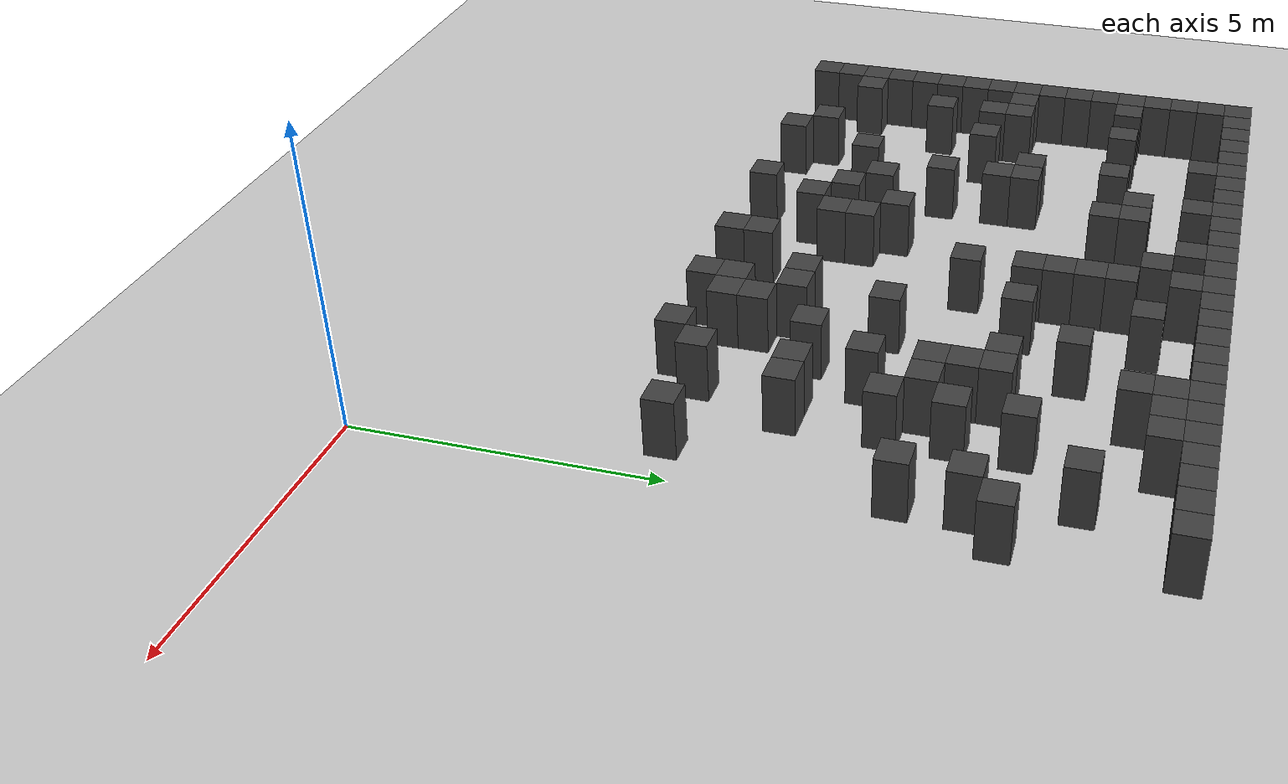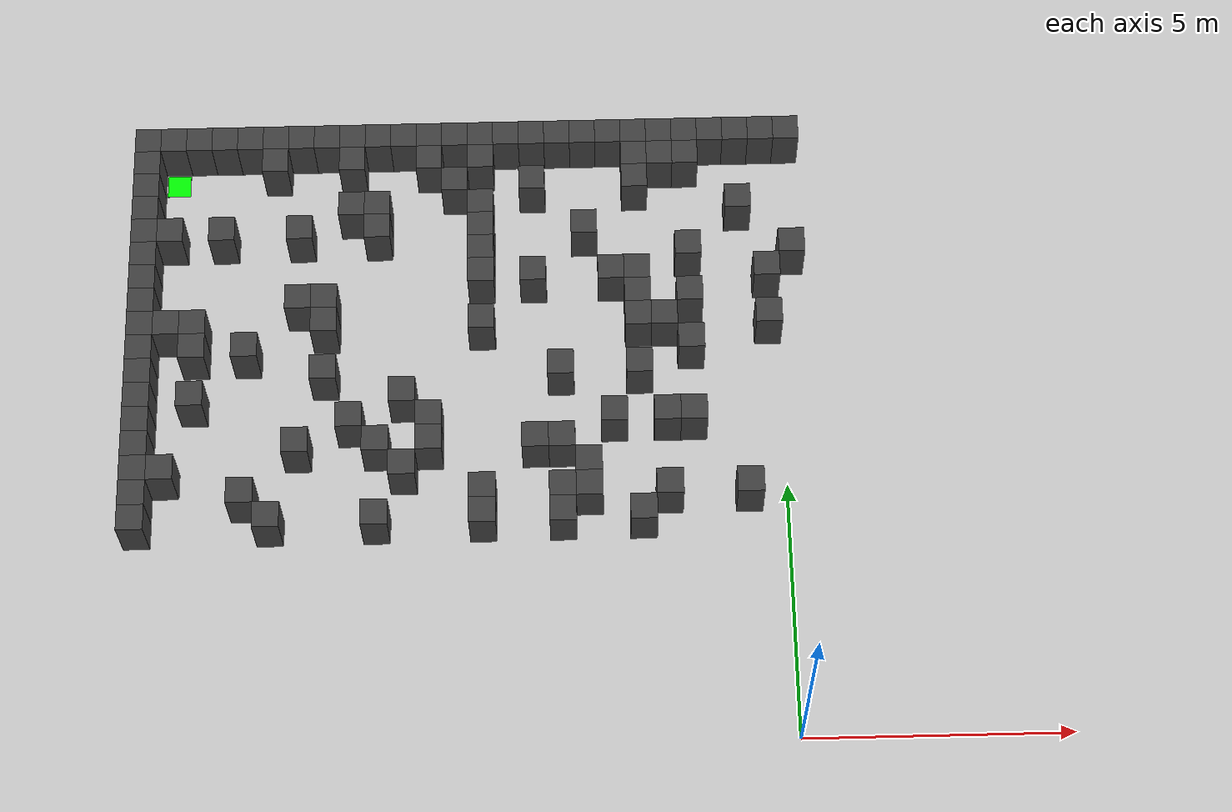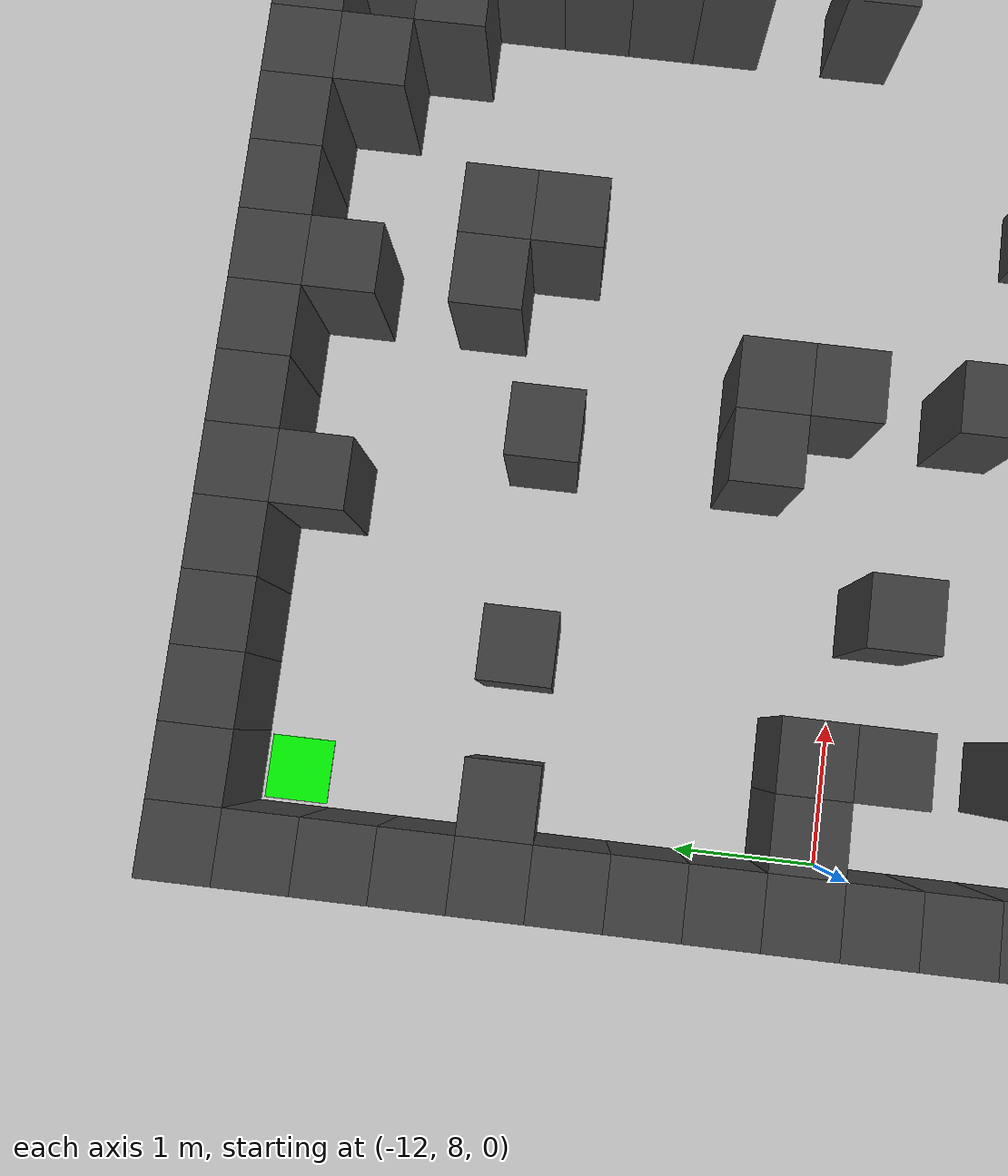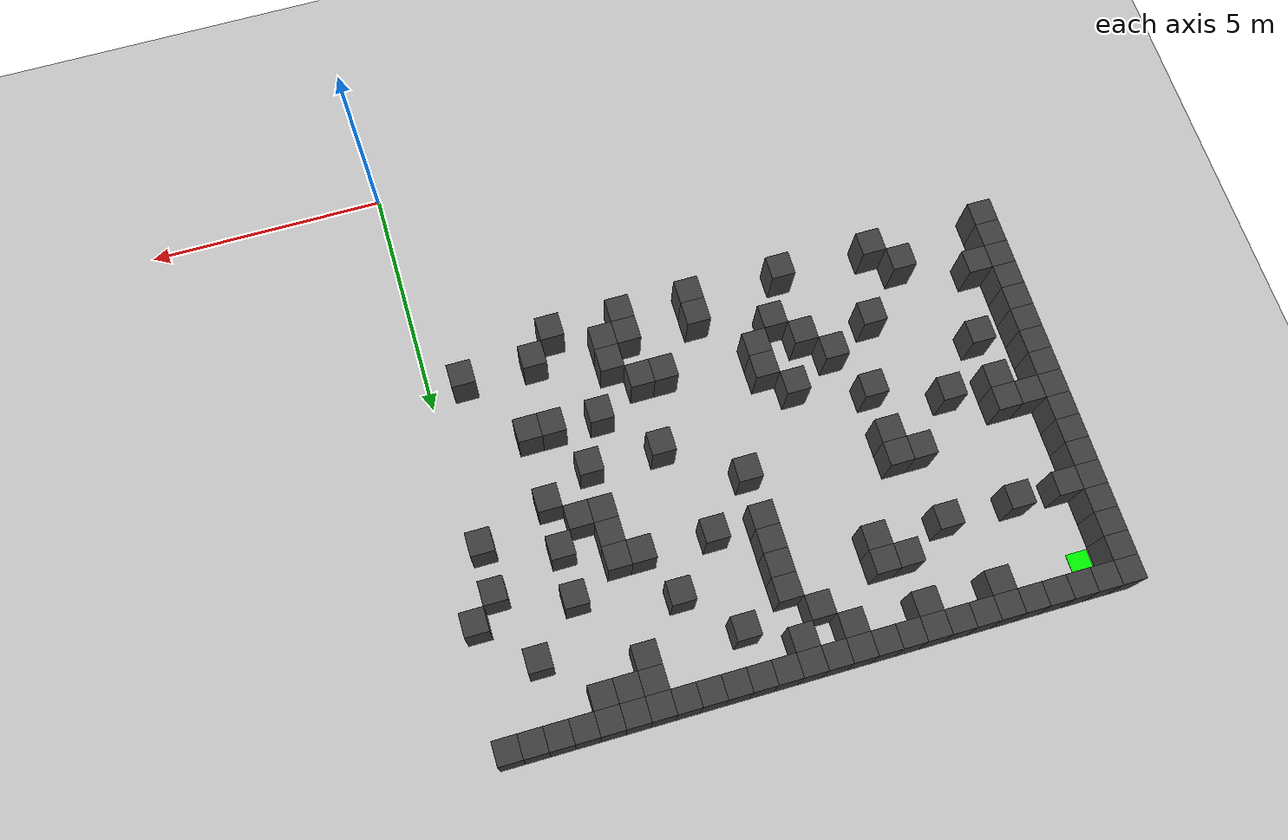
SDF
<sdf version="1.7">
 <world name="map_4390">
  <model name="ground_plane">
   <static>true</static>
   <link name="link">
    <collision name="collision">
     <geometry><plane><normal>0 0 1</normal><size>200 200</size></plane></geometry>
    </collision>
    <visual name="visual">
     <geometry><plane><normal>0 0 1</normal><size>200 200</size></plane></geometry>
     <material><ambient>0.8 0.8 0.8 1</ambient><diffuse>0.8 0.8 0.8 1</diffuse></material>
    </visual>
   </link>
  </model>
  <model name="maze_environment">
   <static>true</static>
   <link name="wall_0">
    <pose>-12.250 12.250 0.500 0 0 0</pose>
    <collision name="col"><geometry><box><size>0.5 0.5 1.0</size></box></geometry></collision>
    <visual name="vis">
     <geometry><box><size>0.5 0.5 1.0</size></box></geometry>
     <material><ambient>0.15 0.15 0.15 1</ambient><diffuse>0.25 0.25 0.25 1</diffuse></material>
    </visual>
   </link>
   <link name="wall_1">
    <pose>-11.750 12.250 0.500 0 0 0</pose>
    <collision name="col"><geometry><box><size>0.5 0.5 1.0</size></box></geometry></collision>
    <visual name="vis">
     <geometry><box><size>0.5 0.5 1.0</size></box></geometry>
     <material><ambient>0.15 0.15 0.15 1</ambient><diffuse>0.25 0.25 0.25 1</diffuse></material>
    </visual>
   </link>
   <link name="wall_2">
    <pose>-11.250 12.250 0.500 0 0 0</pose>
    <collision name="col"><geometry><box><size>0.5 0.5 1.0</size></box></geometry></collision>
    <visual name="vis">
     <geometry><box><size>0.5 0.5 1.0</size></box></geometry>
     <material><ambient>0.15 0.15 0.15 1</ambient><diffuse>0.25 0.25 0.25 1</diffuse></material>
    </visual>
   </link>
   <link name="wall_3">
    <pose>-10.750 12.250 0.500 0 0 0</pose>
    <collision name="col"><geometry><box><size>0.5 0.5 1.0</size></box></geometry></collision>
    <visual name="vis">
     <geometry><box><size>0.5 0.5 1.0</size></box></geometry>
     <material><ambient>0.15 0.15 0.15 1</ambient><diffuse>0.25 0.25 0.25 1</diffuse></material>
    </visual>
   </link>
   <link name="wall_4">
    <pose>-10.250 12.250 0.500 0 0 0</pose>
    <collision name="col"><geometry><box><size>0.5 0.5 1.0</size></box></geometry></collision>
    <visual name="vis">
     <geometry><box><size>0.5 0.5 1.0</size></box></geometry>
     <material><ambient>0.15 0.15 0.15 1</ambient><diffuse>0.25 0.25 0.25 1</diffuse></material>
    </visual>
   </link>
   <link name="wall_5">
    <pose>-9.750 12.250 0.500 0 0 0</pose>
    <collision name="col"><geometry><box><size>0.5 0.5 1.0</size></box></geometry></collision>
    <visual name="vis">
     <geometry><box><size>0.5 0.5 1.0</size></box></geometry>
     <material><ambient>0.15 0.15 0.15 1</ambient><diffuse>0.25 0.25 0.25 1</diffuse></material>
    </visual>
   </link>
   <link name="wall_6">
    <pose>-9.250 12.250 0.500 0 0 0</pose>
    <collision name="col"><geometry><box><size>0.5 0.5 1.0</size></box></geometry></collision>
    <visual name="vis">
     <geometry><box><size>0.5 0.5 1.0</size></box></geometry>
     <material><ambient>0.15 0.15 0.15 1</ambient><diffuse>0.25 0.25 0.25 1</diffuse></material>
    </visual>
   </link>
   <link name="wall_7">
    <pose>-8.750 12.250 0.500 0 0 0</pose>
    <collision name="col"><geometry><box><size>0.5 0.5 1.0</size></box></geometry></collision>
    <visual name="vis">
     <geometry><box><size>0.5 0.5 1.0</size></box></geometry>
     <material><ambient>0.15 0.15 0.15 1</ambient><diffuse>0.25 0.25 0.25 1</diffuse></material>
    </visual>
   </link>
   <link name="wall_8">
    <pose>-8.250 12.250 0.500 0 0 0</pose>
    <collision name="col"><geometry><box><size>0.5 0.5 1.0</size></box></geometry></collision>
    <visual name="vis">
     <geometry><box><size>0.5 0.5 1.0</size></box></geometry>
     <material><ambient>0.15 0.15 0.15 1</ambient><diffuse>0.25 0.25 0.25 1</diffuse></material>
    </visual>
   </link>
   <link name="wall_9">
    <pose>-7.750 12.250 0.500 0 0 0</pose>
    <collision name="col"><geometry><box><size>0.5 0.5 1.0</size></box></geometry></collision>
    <visual name="vis">
     <geometry><box><size>0.5 0.5 1.0</size></box></geometry>
     <material><ambient>0.15 0.15 0.15 1</ambient><diffuse>0.25 0.25 0.25 1</diffuse></material>
    </visual>
   </link>
   <link name="wall_10">
    <pose>-7.250 12.250 0.500 0 0 0</pose>
    <collision name="col"><geometry><box><size>0.5 0.5 1.0</size></box></geometry></collision>
    <visual name="vis">
     <geometry><box><size>0.5 0.5 1.0</size></box></geometry>
     <material><ambient>0.15 0.15 0.15 1</ambient><diffuse>0.25 0.25 0.25 1</diffuse></material>
    </visual>
   </link>
   <link name="wall_11">
    <pose>-6.750 12.250 0.500 0 0 0</pose>
    <collision name="col"><geometry><box><size>0.5 0.5 1.0</size></box></geometry></collision>
    <visual name="vis">
     <geometry><box><size>0.5 0.5 1.0</size></box></geometry>
     <material><ambient>0.15 0.15 0.15 1</ambient><diffuse>0.25 0.25 0.25 1</diffuse></material>
    </visual>
   </link>
   <link name="wall_12">
    <pose>-6.250 12.250 0.500 0 0 0</pose>
    <collision name="col"><geometry><box><size>0.5 0.5 1.0</size></box></geometry></collision>
    <visual name="vis">
     <geometry><box><size>0.5 0.5 1.0</size></box></geometry>
     <material><ambient>0.15 0.15 0.15 1</ambient><diffuse>0.25 0.25 0.25 1</diffuse></material>
    </visual>
   </link>
   <link name="wall_13">
    <pose>-5.750 12.250 0.500 0 0 0</pose>
    <collision name="col"><geometry><box><size>0.5 0.5 1.0</size></box></geometry></collision>
    <visual name="vis">
     <geometry><box><size>0.5 0.5 1.0</size></box></geometry>
     <material><ambient>0.15 0.15 0.15 1</ambient><diffuse>0.25 0.25 0.25 1</diffuse></material>
    </visual>
   </link>
   <link name="wall_14">
    <pose>-5.250 12.250 0.500 0 0 0</pose>
    <collision name="col"><geometry><box><size>0.5 0.5 1.0</size></box></geometry></collision>
    <visual name="vis">
     <geometry><box><size>0.5 0.5 1.0</size></box></geometry>
     <material><ambient>0.15 0.15 0.15 1</ambient><diffuse>0.25 0.25 0.25 1</diffuse></material>
    </visual>
   </link>
   <link name="wall_15">
    <pose>-4.750 12.250 0.500 0 0 0</pose>
    <collision name="col"><geometry><box><size>0.5 0.5 1.0</size></box></geometry></collision>
    <visual name="vis">
     <geometry><box><size>0.5 0.5 1.0</size></box></geometry>
     <material><ambient>0.15 0.15 0.15 1</ambient><diffuse>0.25 0.25 0.25 1</diffuse></material>
    </visual>
   </link>
   <link name="wall_16">
    <pose>-4.250 12.250 0.500 0 0 0</pose>
    <collision name="col"><geometry><box><size>0.5 0.5 1.0</size></box></geometry></collision>
    <visual name="vis">
     <geometry><box><size>0.5 0.5 1.0</size></box></geometry>
     <material><ambient>0.15 0.15 0.15 1</ambient><diffuse>0.25 0.25 0.25 1</diffuse></material>
    </visual>
   </link>
   <link name="wall_17">
    <pose>-3.750 12.250 0.500 0 0 0</pose>
    <collision name="col"><geometry><box><size>0.5 0.5 1.0</size></box></geometry></collision>
    <visual name="vis">
     <geometry><box><size>0.5 0.5 1.0</size></box></geometry>
     <material><ambient>0.15 0.15 0.15 1</ambient><diffuse>0.25 0.25 0.25 1</diffuse></material>
    </visual>
   </link>
   <link name="wall_18">
    <pose>-3.250 12.250 0.500 0 0 0</pose>
    <collision name="col"><geometry><box><size>0.5 0.5 1.0</size></box></geometry></collision>
    <visual name="vis">
     <geometry><box><size>0.5 0.5 1.0</size></box></geometry>
     <material><ambient>0.15 0.15 0.15 1</ambient><diffuse>0.25 0.25 0.25 1</diffuse></material>
    </visual>
   </link>
   <link name="wall_19">
    <pose>-2.750 12.250 0.500 0 0 0</pose>
    <collision name="col"><geometry><box><size>0.5 0.5 1.0</size></box></geometry></collision>
    <visual name="vis">
     <geometry><box><size>0.5 0.5 1.0</size></box></geometry>
     <material><ambient>0.15 0.15 0.15 1</ambient><diffuse>0.25 0.25 0.25 1</diffuse></material>
    </visual>
   </link>
   <link name="wall_20">
    <pose>-2.250 12.250 0.500 0 0 0</pose>
    <collision name="col"><geometry><box><size>0.5 0.5 1.0</size></box></geometry></collision>
    <visual name="vis">
     <geometry><box><size>0.5 0.5 1.0</size></box></geometry>
     <material><ambient>0.15 0.15 0.15 1</ambient><diffuse>0.25 0.25 0.25 1</diffuse></material>
    </visual>
   </link>
   <link name="wall_21">
    <pose>-1.750 12.250 0.500 0 0 0</pose>
    <collision name="col"><geometry><box><size>0.5 0.5 1.0</size></box></geometry></collision>
    <visual name="vis">
     <geometry><box><size>0.5 0.5 1.0</size></box></geometry>
     <material><ambient>0.15 0.15 0.15 1</ambient><diffuse>0.25 0.25 0.25 1</diffuse></material>
    </visual>
   </link>
   <link name="wall_22">
    <pose>-1.250 12.250 0.500 0 0 0</pose>
    <collision name="col"><geometry><box><size>0.5 0.5 1.0</size></box></geometry></collision>
    <visual name="vis">
     <geometry><box><size>0.5 0.5 1.0</size></box></geometry>
     <material><ambient>0.15 0.15 0.15 1</ambient><diffuse>0.25 0.25 0.25 1</diffuse></material>
    </visual>
   </link>
   <link name="wall_23">
    <pose>-0.750 12.250 0.500 0 0 0</pose>
    <collision name="col"><geometry><box><size>0.5 0.5 1.0</size></box></geometry></collision>
    <visual name="vis">
     <geometry><box><size>0.5 0.5 1.0</size></box></geometry>
     <material><ambient>0.15 0.15 0.15 1</ambient><diffuse>0.25 0.25 0.25 1</diffuse></material>
    </visual>
   </link>
   <link name="wall_24">
    <pose>-0.250 12.250 0.500 0 0 0</pose>
    <collision name="col"><geometry><box><size>0.5 0.5 1.0</size></box></geometry></collision>
    <visual name="vis">
     <geometry><box><size>0.5 0.5 1.0</size></box></geometry>
     <material><ambient>0.15 0.15 0.15 1</ambient><diffuse>0.25 0.25 0.25 1</diffuse></material>
    </visual>
   </link>
   <link name="wall_25">
    <pose>0.250 12.250 0.500 0 0 0</pose>
    <collision name="col"><geometry><box><size>0.5 0.5 1.0</size></box></geometry></collision>
    <visual name="vis">
     <geometry><box><size>0.5 0.5 1.0</size></box></geometry>
     <material><ambient>0.15 0.15 0.15 1</ambient><diffuse>0.25 0.25 0.25 1</diffuse></material>
    </visual>
   </link>
   <link name="wall_50">
    <pose>-12.250 11.750 0.500 0 0 0</pose>
    <collision name="col"><geometry><box><size>0.5 0.5 1.0</size></box></geometry></collision>
    <visual name="vis">
     <geometry><box><size>0.5 0.5 1.0</size></box></geometry>
     <material><ambient>0.15 0.15 0.15 1</ambient><diffuse>0.25 0.25 0.25 1</diffuse></material>
    </visual>
   </link>
   <link name="wall_51">
    <pose>-9.750 11.750 0.500 0 0 0</pose>
    <collision name="col"><geometry><box><size>0.5 0.5 1.0</size></box></geometry></collision>
    <visual name="vis">
     <geometry><box><size>0.5 0.5 1.0</size></box></geometry>
     <material><ambient>0.15 0.15 0.15 1</ambient><diffuse>0.25 0.25 0.25 1</diffuse></material>
    </visual>
   </link>
   <link name="wall_52">
    <pose>-8.250 11.750 0.500 0 0 0</pose>
    <collision name="col"><geometry><box><size>0.5 0.5 1.0</size></box></geometry></collision>
    <visual name="vis">
     <geometry><box><size>0.5 0.5 1.0</size></box></geometry>
     <material><ambient>0.15 0.15 0.15 1</ambient><diffuse>0.25 0.25 0.25 1</diffuse></material>
    </visual>
   </link>
   <link name="wall_53">
    <pose>-6.750 11.750 0.500 0 0 0</pose>
    <collision name="col"><geometry><box><size>0.5 0.5 1.0</size></box></geometry></collision>
    <visual name="vis">
     <geometry><box><size>0.5 0.5 1.0</size></box></geometry>
     <material><ambient>0.15 0.15 0.15 1</ambient><diffuse>0.25 0.25 0.25 1</diffuse></material>
    </visual>
   </link>
   <link name="wall_54">
    <pose>-5.750 11.750 0.500 0 0 0</pose>
    <collision name="col"><geometry><box><size>0.5 0.5 1.0</size></box></geometry></collision>
    <visual name="vis">
     <geometry><box><size>0.5 0.5 1.0</size></box></geometry>
     <material><ambient>0.15 0.15 0.15 1</ambient><diffuse>0.25 0.25 0.25 1</diffuse></material>
    </visual>
   </link>
   <link name="wall_55">
    <pose>-2.750 11.750 0.500 0 0 0</pose>
    <collision name="col"><geometry><box><size>0.5 0.5 1.0</size></box></geometry></collision>
    <visual name="vis">
     <geometry><box><size>0.5 0.5 1.0</size></box></geometry>
     <material><ambient>0.15 0.15 0.15 1</ambient><diffuse>0.25 0.25 0.25 1</diffuse></material>
    </visual>
   </link>
   <link name="wall_56">
    <pose>-2.250 11.750 0.500 0 0 0</pose>
    <collision name="col"><geometry><box><size>0.5 0.5 1.0</size></box></geometry></collision>
    <visual name="vis">
     <geometry><box><size>0.5 0.5 1.0</size></box></geometry>
     <material><ambient>0.15 0.15 0.15 1</ambient><diffuse>0.25 0.25 0.25 1</diffuse></material>
    </visual>
   </link>
   <link name="wall_57">
    <pose>-1.750 11.750 0.500 0 0 0</pose>
    <collision name="col"><geometry><box><size>0.5 0.5 1.0</size></box></geometry></collision>
    <visual name="vis">
     <geometry><box><size>0.5 0.5 1.0</size></box></geometry>
     <material><ambient>0.15 0.15 0.15 1</ambient><diffuse>0.25 0.25 0.25 1</diffuse></material>
    </visual>
   </link>
   <link name="wall_64">
    <pose>-12.250 11.250 0.500 0 0 0</pose>
    <collision name="col"><geometry><box><size>0.5 0.5 1.0</size></box></geometry></collision>
    <visual name="vis">
     <geometry><box><size>0.5 0.5 1.0</size></box></geometry>
     <material><ambient>0.15 0.15 0.15 1</ambient><diffuse>0.25 0.25 0.25 1</diffuse></material>
    </visual>
   </link>
   <link name="wall_65">
    <pose>-6.250 11.250 0.500 0 0 0</pose>
    <collision name="col"><geometry><box><size>0.5 0.5 1.0</size></box></geometry></collision>
    <visual name="vis">
     <geometry><box><size>0.5 0.5 1.0</size></box></geometry>
     <material><ambient>0.15 0.15 0.15 1</ambient><diffuse>0.25 0.25 0.25 1</diffuse></material>
    </visual>
   </link>
   <link name="wall_66">
    <pose>-4.750 11.250 0.500 0 0 0</pose>
    <collision name="col"><geometry><box><size>0.5 0.5 1.0</size></box></geometry></collision>
    <visual name="vis">
     <geometry><box><size>0.5 0.5 1.0</size></box></geometry>
     <material><ambient>0.15 0.15 0.15 1</ambient><diffuse>0.25 0.25 0.25 1</diffuse></material>
    </visual>
   </link>
   <link name="wall_67">
    <pose>-2.750 11.250 0.500 0 0 0</pose>
    <collision name="col"><geometry><box><size>0.5 0.5 1.0</size></box></geometry></collision>
    <visual name="vis">
     <geometry><box><size>0.5 0.5 1.0</size></box></geometry>
     <material><ambient>0.15 0.15 0.15 1</ambient><diffuse>0.25 0.25 0.25 1</diffuse></material>
    </visual>
   </link>
   <link name="wall_73">
    <pose>-12.250 10.750 0.500 0 0 0</pose>
    <collision name="col"><geometry><box><size>0.5 0.5 1.0</size></box></geometry></collision>
    <visual name="vis">
     <geometry><box><size>0.5 0.5 1.0</size></box></geometry>
     <material><ambient>0.15 0.15 0.15 1</ambient><diffuse>0.25 0.25 0.25 1</diffuse></material>
    </visual>
   </link>
   <link name="wall_74">
    <pose>-8.250 10.750 0.500 0 0 0</pose>
    <collision name="col"><geometry><box><size>0.5 0.5 1.0</size></box></geometry></collision>
    <visual name="vis">
     <geometry><box><size>0.5 0.5 1.0</size></box></geometry>
     <material><ambient>0.15 0.15 0.15 1</ambient><diffuse>0.25 0.25 0.25 1</diffuse></material>
    </visual>
   </link>
   <link name="wall_75">
    <pose>-7.750 10.750 0.500 0 0 0</pose>
    <collision name="col"><geometry><box><size>0.5 0.5 1.0</size></box></geometry></collision>
    <visual name="vis">
     <geometry><box><size>0.5 0.5 1.0</size></box></geometry>
     <material><ambient>0.15 0.15 0.15 1</ambient><diffuse>0.25 0.25 0.25 1</diffuse></material>
    </visual>
   </link>
   <link name="wall_76">
    <pose>-5.750 10.750 0.500 0 0 0</pose>
    <collision name="col"><geometry><box><size>0.5 0.5 1.0</size></box></geometry></collision>
    <visual name="vis">
     <geometry><box><size>0.5 0.5 1.0</size></box></geometry>
     <material><ambient>0.15 0.15 0.15 1</ambient><diffuse>0.25 0.25 0.25 1</diffuse></material>
    </visual>
   </link>
   <link name="wall_77">
    <pose>-0.750 10.750 0.500 0 0 0</pose>
    <collision name="col"><geometry><box><size>0.5 0.5 1.0</size></box></geometry></collision>
    <visual name="vis">
     <geometry><box><size>0.5 0.5 1.0</size></box></geometry>
     <material><ambient>0.15 0.15 0.15 1</ambient><diffuse>0.25 0.25 0.25 1</diffuse></material>
    </visual>
   </link>
   <link name="wall_84">
    <pose>-12.250 10.250 0.500 0 0 0</pose>
    <collision name="col"><geometry><box><size>0.5 0.5 1.0</size></box></geometry></collision>
    <visual name="vis">
     <geometry><box><size>0.5 0.5 1.0</size></box></geometry>
     <material><ambient>0.15 0.15 0.15 1</ambient><diffuse>0.25 0.25 0.25 1</diffuse></material>
    </visual>
   </link>
   <link name="wall_85">
    <pose>-11.750 10.250 0.500 0 0 0</pose>
    <collision name="col"><geometry><box><size>0.5 0.5 1.0</size></box></geometry></collision>
    <visual name="vis">
     <geometry><box><size>0.5 0.5 1.0</size></box></geometry>
     <material><ambient>0.15 0.15 0.15 1</ambient><diffuse>0.25 0.25 0.25 1</diffuse></material>
    </visual>
   </link>
   <link name="wall_86">
    <pose>-10.750 10.250 0.500 0 0 0</pose>
    <collision name="col"><geometry><box><size>0.5 0.5 1.0</size></box></geometry></collision>
    <visual name="vis">
     <geometry><box><size>0.5 0.5 1.0</size></box></geometry>
     <material><ambient>0.15 0.15 0.15 1</ambient><diffuse>0.25 0.25 0.25 1</diffuse></material>
    </visual>
   </link>
   <link name="wall_87">
    <pose>-9.250 10.250 0.500 0 0 0</pose>
    <collision name="col"><geometry><box><size>0.5 0.5 1.0</size></box></geometry></collision>
    <visual name="vis">
     <geometry><box><size>0.5 0.5 1.0</size></box></geometry>
     <material><ambient>0.15 0.15 0.15 1</ambient><diffuse>0.25 0.25 0.25 1</diffuse></material>
    </visual>
   </link>
   <link name="wall_88">
    <pose>-7.750 10.250 0.500 0 0 0</pose>
    <collision name="col"><geometry><box><size>0.5 0.5 1.0</size></box></geometry></collision>
    <visual name="vis">
     <geometry><box><size>0.5 0.5 1.0</size></box></geometry>
     <material><ambient>0.15 0.15 0.15 1</ambient><diffuse>0.25 0.25 0.25 1</diffuse></material>
    </visual>
   </link>
   <link name="wall_89">
    <pose>-5.750 10.250 0.500 0 0 0</pose>
    <collision name="col"><geometry><box><size>0.5 0.5 1.0</size></box></geometry></collision>
    <visual name="vis">
     <geometry><box><size>0.5 0.5 1.0</size></box></geometry>
     <material><ambient>0.15 0.15 0.15 1</ambient><diffuse>0.25 0.25 0.25 1</diffuse></material>
    </visual>
   </link>
   <link name="wall_90">
    <pose>-3.750 10.250 0.500 0 0 0</pose>
    <collision name="col"><geometry><box><size>0.5 0.5 1.0</size></box></geometry></collision>
    <visual name="vis">
     <geometry><box><size>0.5 0.5 1.0</size></box></geometry>
     <material><ambient>0.15 0.15 0.15 1</ambient><diffuse>0.25 0.25 0.25 1</diffuse></material>
    </visual>
   </link>
   <link name="wall_97">
    <pose>-12.250 9.750 0.500 0 0 0</pose>
    <collision name="col"><geometry><box><size>0.5 0.5 1.0</size></box></geometry></collision>
    <visual name="vis">
     <geometry><box><size>0.5 0.5 1.0</size></box></geometry>
     <material><ambient>0.15 0.15 0.15 1</ambient><diffuse>0.25 0.25 0.25 1</diffuse></material>
    </visual>
   </link>
   <link name="wall_98">
    <pose>-5.750 9.750 0.500 0 0 0</pose>
    <collision name="col"><geometry><box><size>0.5 0.5 1.0</size></box></geometry></collision>
    <visual name="vis">
     <geometry><box><size>0.5 0.5 1.0</size></box></geometry>
     <material><ambient>0.15 0.15 0.15 1</ambient><diffuse>0.25 0.25 0.25 1</diffuse></material>
    </visual>
   </link>
   <link name="wall_99">
    <pose>-1.750 9.750 0.500 0 0 0</pose>
    <collision name="col"><geometry><box><size>0.5 0.5 1.0</size></box></geometry></collision>
    <visual name="vis">
     <geometry><box><size>0.5 0.5 1.0</size></box></geometry>
     <material><ambient>0.15 0.15 0.15 1</ambient><diffuse>0.25 0.25 0.25 1</diffuse></material>
    </visual>
   </link>
   <link name="wall_100">
    <pose>0.250 9.750 0.500 0 0 0</pose>
    <collision name="col"><geometry><box><size>0.5 0.5 1.0</size></box></geometry></collision>
    <visual name="vis">
     <geometry><box><size>0.5 0.5 1.0</size></box></geometry>
     <material><ambient>0.15 0.15 0.15 1</ambient><diffuse>0.25 0.25 0.25 1</diffuse></material>
    </visual>
   </link>
   <link name="wall_105">
    <pose>-12.250 9.250 0.500 0 0 0</pose>
    <collision name="col"><geometry><box><size>0.5 0.5 1.0</size></box></geometry></collision>
    <visual name="vis">
     <geometry><box><size>0.5 0.5 1.0</size></box></geometry>
     <material><ambient>0.15 0.15 0.15 1</ambient><diffuse>0.25 0.25 0.25 1</diffuse></material>
    </visual>
   </link>
   <link name="wall_106">
    <pose>-5.750 9.250 0.500 0 0 0</pose>
    <collision name="col"><geometry><box><size>0.5 0.5 1.0</size></box></geometry></collision>
    <visual name="vis">
     <geometry><box><size>0.5 0.5 1.0</size></box></geometry>
     <material><ambient>0.15 0.15 0.15 1</ambient><diffuse>0.25 0.25 0.25 1</diffuse></material>
    </visual>
   </link>
   <link name="wall_107">
    <pose>-4.750 9.250 0.500 0 0 0</pose>
    <collision name="col"><geometry><box><size>0.5 0.5 1.0</size></box></geometry></collision>
    <visual name="vis">
     <geometry><box><size>0.5 0.5 1.0</size></box></geometry>
     <material><ambient>0.15 0.15 0.15 1</ambient><diffuse>0.25 0.25 0.25 1</diffuse></material>
    </visual>
   </link>
   <link name="wall_108">
    <pose>-3.250 9.250 0.500 0 0 0</pose>
    <collision name="col"><geometry><box><size>0.5 0.5 1.0</size></box></geometry></collision>
    <visual name="vis">
     <geometry><box><size>0.5 0.5 1.0</size></box></geometry>
     <material><ambient>0.15 0.15 0.15 1</ambient><diffuse>0.25 0.25 0.25 1</diffuse></material>
    </visual>
   </link>
   <link name="wall_109">
    <pose>-2.750 9.250 0.500 0 0 0</pose>
    <collision name="col"><geometry><box><size>0.5 0.5 1.0</size></box></geometry></collision>
    <visual name="vis">
     <geometry><box><size>0.5 0.5 1.0</size></box></geometry>
     <material><ambient>0.15 0.15 0.15 1</ambient><diffuse>0.25 0.25 0.25 1</diffuse></material>
    </visual>
   </link>
   <link name="wall_110">
    <pose>-0.250 9.250 0.500 0 0 0</pose>
    <collision name="col"><geometry><box><size>0.5 0.5 1.0</size></box></geometry></collision>
    <visual name="vis">
     <geometry><box><size>0.5 0.5 1.0</size></box></geometry>
     <material><ambient>0.15 0.15 0.15 1</ambient><diffuse>0.25 0.25 0.25 1</diffuse></material>
    </visual>
   </link>
   <link name="wall_117">
    <pose>-12.250 8.750 0.500 0 0 0</pose>
    <collision name="col"><geometry><box><size>0.5 0.5 1.0</size></box></geometry></collision>
    <visual name="vis">
     <geometry><box><size>0.5 0.5 1.0</size></box></geometry>
     <material><ambient>0.15 0.15 0.15 1</ambient><diffuse>0.25 0.25 0.25 1</diffuse></material>
    </visual>
   </link>
   <link name="wall_118">
    <pose>-9.250 8.750 0.500 0 0 0</pose>
    <collision name="col"><geometry><box><size>0.5 0.5 1.0</size></box></geometry></collision>
    <visual name="vis">
     <geometry><box><size>0.5 0.5 1.0</size></box></geometry>
     <material><ambient>0.15 0.15 0.15 1</ambient><diffuse>0.25 0.25 0.25 1</diffuse></material>
    </visual>
   </link>
   <link name="wall_119">
    <pose>-8.750 8.750 0.500 0 0 0</pose>
    <collision name="col"><geometry><box><size>0.5 0.5 1.0</size></box></geometry></collision>
    <visual name="vis">
     <geometry><box><size>0.5 0.5 1.0</size></box></geometry>
     <material><ambient>0.15 0.15 0.15 1</ambient><diffuse>0.25 0.25 0.25 1</diffuse></material>
    </visual>
   </link>
   <link name="wall_120">
    <pose>-2.750 8.750 0.500 0 0 0</pose>
    <collision name="col"><geometry><box><size>0.5 0.5 1.0</size></box></geometry></collision>
    <visual name="vis">
     <geometry><box><size>0.5 0.5 1.0</size></box></geometry>
     <material><ambient>0.15 0.15 0.15 1</ambient><diffuse>0.25 0.25 0.25 1</diffuse></material>
    </visual>
   </link>
   <link name="wall_121">
    <pose>-1.750 8.750 0.500 0 0 0</pose>
    <collision name="col"><geometry><box><size>0.5 0.5 1.0</size></box></geometry></collision>
    <visual name="vis">
     <geometry><box><size>0.5 0.5 1.0</size></box></geometry>
     <material><ambient>0.15 0.15 0.15 1</ambient><diffuse>0.25 0.25 0.25 1</diffuse></material>
    </visual>
   </link>
   <link name="wall_126">
    <pose>-12.250 8.250 0.500 0 0 0</pose>
    <collision name="col"><geometry><box><size>0.5 0.5 1.0</size></box></geometry></collision>
    <visual name="vis">
     <geometry><box><size>0.5 0.5 1.0</size></box></geometry>
     <material><ambient>0.15 0.15 0.15 1</ambient><diffuse>0.25 0.25 0.25 1</diffuse></material>
    </visual>
   </link>
   <link name="wall_127">
    <pose>-11.750 8.250 0.500 0 0 0</pose>
    <collision name="col"><geometry><box><size>0.5 0.5 1.0</size></box></geometry></collision>
    <visual name="vis">
     <geometry><box><size>0.5 0.5 1.0</size></box></geometry>
     <material><ambient>0.15 0.15 0.15 1</ambient><diffuse>0.25 0.25 0.25 1</diffuse></material>
    </visual>
   </link>
   <link name="wall_128">
    <pose>-11.250 8.250 0.500 0 0 0</pose>
    <collision name="col"><geometry><box><size>0.5 0.5 1.0</size></box></geometry></collision>
    <visual name="vis">
     <geometry><box><size>0.5 0.5 1.0</size></box></geometry>
     <material><ambient>0.15 0.15 0.15 1</ambient><diffuse>0.25 0.25 0.25 1</diffuse></material>
    </visual>
   </link>
   <link name="wall_129">
    <pose>-8.750 8.250 0.500 0 0 0</pose>
    <collision name="col"><geometry><box><size>0.5 0.5 1.0</size></box></geometry></collision>
    <visual name="vis">
     <geometry><box><size>0.5 0.5 1.0</size></box></geometry>
     <material><ambient>0.15 0.15 0.15 1</ambient><diffuse>0.25 0.25 0.25 1</diffuse></material>
    </visual>
   </link>
   <link name="wall_130">
    <pose>-5.750 8.250 0.500 0 0 0</pose>
    <collision name="col"><geometry><box><size>0.5 0.5 1.0</size></box></geometry></collision>
    <visual name="vis">
     <geometry><box><size>0.5 0.5 1.0</size></box></geometry>
     <material><ambient>0.15 0.15 0.15 1</ambient><diffuse>0.25 0.25 0.25 1</diffuse></material>
    </visual>
   </link>
   <link name="wall_131">
    <pose>-2.750 8.250 0.500 0 0 0</pose>
    <collision name="col"><geometry><box><size>0.5 0.5 1.0</size></box></geometry></collision>
    <visual name="vis">
     <geometry><box><size>0.5 0.5 1.0</size></box></geometry>
     <material><ambient>0.15 0.15 0.15 1</ambient><diffuse>0.25 0.25 0.25 1</diffuse></material>
    </visual>
   </link>
   <link name="wall_132">
    <pose>-2.250 8.250 0.500 0 0 0</pose>
    <collision name="col"><geometry><box><size>0.5 0.5 1.0</size></box></geometry></collision>
    <visual name="vis">
     <geometry><box><size>0.5 0.5 1.0</size></box></geometry>
     <material><ambient>0.15 0.15 0.15 1</ambient><diffuse>0.25 0.25 0.25 1</diffuse></material>
    </visual>
   </link>
   <link name="wall_133">
    <pose>-0.250 8.250 0.500 0 0 0</pose>
    <collision name="col"><geometry><box><size>0.5 0.5 1.0</size></box></geometry></collision>
    <visual name="vis">
     <geometry><box><size>0.5 0.5 1.0</size></box></geometry>
     <material><ambient>0.15 0.15 0.15 1</ambient><diffuse>0.25 0.25 0.25 1</diffuse></material>
    </visual>
   </link>
   <link name="wall_143">
    <pose>-12.250 7.750 0.500 0 0 0</pose>
    <collision name="col"><geometry><box><size>0.5 0.5 1.0</size></box></geometry></collision>
    <visual name="vis">
     <geometry><box><size>0.5 0.5 1.0</size></box></geometry>
     <material><ambient>0.15 0.15 0.15 1</ambient><diffuse>0.25 0.25 0.25 1</diffuse></material>
    </visual>
   </link>
   <link name="wall_144">
    <pose>-11.250 7.750 0.500 0 0 0</pose>
    <collision name="col"><geometry><box><size>0.5 0.5 1.0</size></box></geometry></collision>
    <visual name="vis">
     <geometry><box><size>0.5 0.5 1.0</size></box></geometry>
     <material><ambient>0.15 0.15 0.15 1</ambient><diffuse>0.25 0.25 0.25 1</diffuse></material>
    </visual>
   </link>
   <link name="wall_145">
    <pose>-10.250 7.750 0.500 0 0 0</pose>
    <collision name="col"><geometry><box><size>0.5 0.5 1.0</size></box></geometry></collision>
    <visual name="vis">
     <geometry><box><size>0.5 0.5 1.0</size></box></geometry>
     <material><ambient>0.15 0.15 0.15 1</ambient><diffuse>0.25 0.25 0.25 1</diffuse></material>
    </visual>
   </link>
   <link name="wall_146">
    <pose>-1.750 7.750 0.500 0 0 0</pose>
    <collision name="col"><geometry><box><size>0.5 0.5 1.0</size></box></geometry></collision>
    <visual name="vis">
     <geometry><box><size>0.5 0.5 1.0</size></box></geometry>
     <material><ambient>0.15 0.15 0.15 1</ambient><diffuse>0.25 0.25 0.25 1</diffuse></material>
    </visual>
   </link>
   <link name="wall_156">
    <pose>-12.250 7.250 0.500 0 0 0</pose>
    <collision name="col"><geometry><box><size>0.5 0.5 1.0</size></box></geometry></collision>
    <visual name="vis">
     <geometry><box><size>0.5 0.5 1.0</size></box></geometry>
     <material><ambient>0.15 0.15 0.15 1</ambient><diffuse>0.25 0.25 0.25 1</diffuse></material>
    </visual>
   </link>
   <link name="wall_157">
    <pose>-8.750 7.250 0.500 0 0 0</pose>
    <collision name="col"><geometry><box><size>0.5 0.5 1.0</size></box></geometry></collision>
    <visual name="vis">
     <geometry><box><size>0.5 0.5 1.0</size></box></geometry>
     <material><ambient>0.15 0.15 0.15 1</ambient><diffuse>0.25 0.25 0.25 1</diffuse></material>
    </visual>
   </link>
   <link name="wall_158">
    <pose>-4.250 7.250 0.500 0 0 0</pose>
    <collision name="col"><geometry><box><size>0.5 0.5 1.0</size></box></geometry></collision>
    <visual name="vis">
     <geometry><box><size>0.5 0.5 1.0</size></box></geometry>
     <material><ambient>0.15 0.15 0.15 1</ambient><diffuse>0.25 0.25 0.25 1</diffuse></material>
    </visual>
   </link>
   <link name="wall_159">
    <pose>-2.750 7.250 0.500 0 0 0</pose>
    <collision name="col"><geometry><box><size>0.5 0.5 1.0</size></box></geometry></collision>
    <visual name="vis">
     <geometry><box><size>0.5 0.5 1.0</size></box></geometry>
     <material><ambient>0.15 0.15 0.15 1</ambient><diffuse>0.25 0.25 0.25 1</diffuse></material>
    </visual>
   </link>
   <link name="wall_165">
    <pose>-12.250 6.750 0.500 0 0 0</pose>
    <collision name="col"><geometry><box><size>0.5 0.5 1.0</size></box></geometry></collision>
    <visual name="vis">
     <geometry><box><size>0.5 0.5 1.0</size></box></geometry>
     <material><ambient>0.15 0.15 0.15 1</ambient><diffuse>0.25 0.25 0.25 1</diffuse></material>
    </visual>
   </link>
   <link name="wall_166">
    <pose>-11.250 6.750 0.500 0 0 0</pose>
    <collision name="col"><geometry><box><size>0.5 0.5 1.0</size></box></geometry></collision>
    <visual name="vis">
     <geometry><box><size>0.5 0.5 1.0</size></box></geometry>
     <material><ambient>0.15 0.15 0.15 1</ambient><diffuse>0.25 0.25 0.25 1</diffuse></material>
    </visual>
   </link>
   <link name="wall_167">
    <pose>-7.250 6.750 0.500 0 0 0</pose>
    <collision name="col"><geometry><box><size>0.5 0.5 1.0</size></box></geometry></collision>
    <visual name="vis">
     <geometry><box><size>0.5 0.5 1.0</size></box></geometry>
     <material><ambient>0.15 0.15 0.15 1</ambient><diffuse>0.25 0.25 0.25 1</diffuse></material>
    </visual>
   </link>
   <link name="wall_175">
    <pose>-12.250 6.250 0.500 0 0 0</pose>
    <collision name="col"><geometry><box><size>0.5 0.5 1.0</size></box></geometry></collision>
    <visual name="vis">
     <geometry><box><size>0.5 0.5 1.0</size></box></geometry>
     <material><ambient>0.15 0.15 0.15 1</ambient><diffuse>0.25 0.25 0.25 1</diffuse></material>
    </visual>
   </link>
   <link name="wall_176">
    <pose>-8.250 6.250 0.500 0 0 0</pose>
    <collision name="col"><geometry><box><size>0.5 0.5 1.0</size></box></geometry></collision>
    <visual name="vis">
     <geometry><box><size>0.5 0.5 1.0</size></box></geometry>
     <material><ambient>0.15 0.15 0.15 1</ambient><diffuse>0.25 0.25 0.25 1</diffuse></material>
    </visual>
   </link>
   <link name="wall_177">
    <pose>-6.750 6.250 0.500 0 0 0</pose>
    <collision name="col"><geometry><box><size>0.5 0.5 1.0</size></box></geometry></collision>
    <visual name="vis">
     <geometry><box><size>0.5 0.5 1.0</size></box></geometry>
     <material><ambient>0.15 0.15 0.15 1</ambient><diffuse>0.25 0.25 0.25 1</diffuse></material>
    </visual>
   </link>
   <link name="wall_178">
    <pose>-3.250 6.250 0.500 0 0 0</pose>
    <collision name="col"><geometry><box><size>0.5 0.5 1.0</size></box></geometry></collision>
    <visual name="vis">
     <geometry><box><size>0.5 0.5 1.0</size></box></geometry>
     <material><ambient>0.15 0.15 0.15 1</ambient><diffuse>0.25 0.25 0.25 1</diffuse></material>
    </visual>
   </link>
   <link name="wall_179">
    <pose>-2.250 6.250 0.500 0 0 0</pose>
    <collision name="col"><geometry><box><size>0.5 0.5 1.0</size></box></geometry></collision>
    <visual name="vis">
     <geometry><box><size>0.5 0.5 1.0</size></box></geometry>
     <material><ambient>0.15 0.15 0.15 1</ambient><diffuse>0.25 0.25 0.25 1</diffuse></material>
    </visual>
   </link>
   <link name="wall_180">
    <pose>-1.750 6.250 0.500 0 0 0</pose>
    <collision name="col"><geometry><box><size>0.5 0.5 1.0</size></box></geometry></collision>
    <visual name="vis">
     <geometry><box><size>0.5 0.5 1.0</size></box></geometry>
     <material><ambient>0.15 0.15 0.15 1</ambient><diffuse>0.25 0.25 0.25 1</diffuse></material>
    </visual>
   </link>
   <link name="wall_185">
    <pose>-12.250 5.750 0.500 0 0 0</pose>
    <collision name="col"><geometry><box><size>0.5 0.5 1.0</size></box></geometry></collision>
    <visual name="vis">
     <geometry><box><size>0.5 0.5 1.0</size></box></geometry>
     <material><ambient>0.15 0.15 0.15 1</ambient><diffuse>0.25 0.25 0.25 1</diffuse></material>
    </visual>
   </link>
   <link name="wall_186">
    <pose>-9.250 5.750 0.500 0 0 0</pose>
    <collision name="col"><geometry><box><size>0.5 0.5 1.0</size></box></geometry></collision>
    <visual name="vis">
     <geometry><box><size>0.5 0.5 1.0</size></box></geometry>
     <material><ambient>0.15 0.15 0.15 1</ambient><diffuse>0.25 0.25 0.25 1</diffuse></material>
    </visual>
   </link>
   <link name="wall_187">
    <pose>-7.750 5.750 0.500 0 0 0</pose>
    <collision name="col"><geometry><box><size>0.5 0.5 1.0</size></box></geometry></collision>
    <visual name="vis">
     <geometry><box><size>0.5 0.5 1.0</size></box></geometry>
     <material><ambient>0.15 0.15 0.15 1</ambient><diffuse>0.25 0.25 0.25 1</diffuse></material>
    </visual>
   </link>
   <link name="wall_188">
    <pose>-6.750 5.750 0.500 0 0 0</pose>
    <collision name="col"><geometry><box><size>0.5 0.5 1.0</size></box></geometry></collision>
    <visual name="vis">
     <geometry><box><size>0.5 0.5 1.0</size></box></geometry>
     <material><ambient>0.15 0.15 0.15 1</ambient><diffuse>0.25 0.25 0.25 1</diffuse></material>
    </visual>
   </link>
   <link name="wall_189">
    <pose>-4.750 5.750 0.500 0 0 0</pose>
    <collision name="col"><geometry><box><size>0.5 0.5 1.0</size></box></geometry></collision>
    <visual name="vis">
     <geometry><box><size>0.5 0.5 1.0</size></box></geometry>
     <material><ambient>0.15 0.15 0.15 1</ambient><diffuse>0.25 0.25 0.25 1</diffuse></material>
    </visual>
   </link>
   <link name="wall_190">
    <pose>-4.250 5.750 0.500 0 0 0</pose>
    <collision name="col"><geometry><box><size>0.5 0.5 1.0</size></box></geometry></collision>
    <visual name="vis">
     <geometry><box><size>0.5 0.5 1.0</size></box></geometry>
     <material><ambient>0.15 0.15 0.15 1</ambient><diffuse>0.25 0.25 0.25 1</diffuse></material>
    </visual>
   </link>
   <link name="wall_198">
    <pose>-12.250 5.250 0.500 0 0 0</pose>
    <collision name="col"><geometry><box><size>0.5 0.5 1.0</size></box></geometry></collision>
    <visual name="vis">
     <geometry><box><size>0.5 0.5 1.0</size></box></geometry>
     <material><ambient>0.15 0.15 0.15 1</ambient><diffuse>0.25 0.25 0.25 1</diffuse></material>
    </visual>
   </link>
   <link name="wall_199">
    <pose>-11.750 5.250 0.500 0 0 0</pose>
    <collision name="col"><geometry><box><size>0.5 0.5 1.0</size></box></geometry></collision>
    <visual name="vis">
     <geometry><box><size>0.5 0.5 1.0</size></box></geometry>
     <material><ambient>0.15 0.15 0.15 1</ambient><diffuse>0.25 0.25 0.25 1</diffuse></material>
    </visual>
   </link>
   <link name="wall_200">
    <pose>-7.250 5.250 0.500 0 0 0</pose>
    <collision name="col"><geometry><box><size>0.5 0.5 1.0</size></box></geometry></collision>
    <visual name="vis">
     <geometry><box><size>0.5 0.5 1.0</size></box></geometry>
     <material><ambient>0.15 0.15 0.15 1</ambient><diffuse>0.25 0.25 0.25 1</diffuse></material>
    </visual>
   </link>
   <link name="wall_201">
    <pose>-3.750 5.250 0.500 0 0 0</pose>
    <collision name="col"><geometry><box><size>0.5 0.5 1.0</size></box></geometry></collision>
    <visual name="vis">
     <geometry><box><size>0.5 0.5 1.0</size></box></geometry>
     <material><ambient>0.15 0.15 0.15 1</ambient><diffuse>0.25 0.25 0.25 1</diffuse></material>
    </visual>
   </link>
   <link name="wall_206">
    <pose>-12.250 4.750 0.500 0 0 0</pose>
    <collision name="col"><geometry><box><size>0.5 0.5 1.0</size></box></geometry></collision>
    <visual name="vis">
     <geometry><box><size>0.5 0.5 1.0</size></box></geometry>
     <material><ambient>0.15 0.15 0.15 1</ambient><diffuse>0.25 0.25 0.25 1</diffuse></material>
    </visual>
   </link>
   <link name="wall_207">
    <pose>-10.250 4.750 0.500 0 0 0</pose>
    <collision name="col"><geometry><box><size>0.5 0.5 1.0</size></box></geometry></collision>
    <visual name="vis">
     <geometry><box><size>0.5 0.5 1.0</size></box></geometry>
     <material><ambient>0.15 0.15 0.15 1</ambient><diffuse>0.25 0.25 0.25 1</diffuse></material>
    </visual>
   </link>
   <link name="wall_208">
    <pose>-5.750 4.750 0.500 0 0 0</pose>
    <collision name="col"><geometry><box><size>0.5 0.5 1.0</size></box></geometry></collision>
    <visual name="vis">
     <geometry><box><size>0.5 0.5 1.0</size></box></geometry>
     <material><ambient>0.15 0.15 0.15 1</ambient><diffuse>0.25 0.25 0.25 1</diffuse></material>
    </visual>
   </link>
   <link name="wall_209">
    <pose>-4.250 4.750 0.500 0 0 0</pose>
    <collision name="col"><geometry><box><size>0.5 0.5 1.0</size></box></geometry></collision>
    <visual name="vis">
     <geometry><box><size>0.5 0.5 1.0</size></box></geometry>
     <material><ambient>0.15 0.15 0.15 1</ambient><diffuse>0.25 0.25 0.25 1</diffuse></material>
    </visual>
   </link>
   <link name="wall_210">
    <pose>-3.750 4.750 0.500 0 0 0</pose>
    <collision name="col"><geometry><box><size>0.5 0.5 1.0</size></box></geometry></collision>
    <visual name="vis">
     <geometry><box><size>0.5 0.5 1.0</size></box></geometry>
     <material><ambient>0.15 0.15 0.15 1</ambient><diffuse>0.25 0.25 0.25 1</diffuse></material>
    </visual>
   </link>
   <link name="wall_211">
    <pose>-2.250 4.750 0.500 0 0 0</pose>
    <collision name="col"><geometry><box><size>0.5 0.5 1.0</size></box></geometry></collision>
    <visual name="vis">
     <geometry><box><size>0.5 0.5 1.0</size></box></geometry>
     <material><ambient>0.15 0.15 0.15 1</ambient><diffuse>0.25 0.25 0.25 1</diffuse></material>
    </visual>
   </link>
   <link name="wall_212">
    <pose>-0.750 4.750 0.500 0 0 0</pose>
    <collision name="col"><geometry><box><size>0.5 0.5 1.0</size></box></geometry></collision>
    <visual name="vis">
     <geometry><box><size>0.5 0.5 1.0</size></box></geometry>
     <material><ambient>0.15 0.15 0.15 1</ambient><diffuse>0.25 0.25 0.25 1</diffuse></material>
    </visual>
   </link>
   <link name="wall_218">
    <pose>-12.250 4.250 0.500 0 0 0</pose>
    <collision name="col"><geometry><box><size>0.5 0.5 1.0</size></box></geometry></collision>
    <visual name="vis">
     <geometry><box><size>0.5 0.5 1.0</size></box></geometry>
     <material><ambient>0.15 0.15 0.15 1</ambient><diffuse>0.25 0.25 0.25 1</diffuse></material>
    </visual>
   </link>
   <link name="wall_219">
    <pose>-9.750 4.250 0.500 0 0 0</pose>
    <collision name="col"><geometry><box><size>0.5 0.5 1.0</size></box></geometry></collision>
    <visual name="vis">
     <geometry><box><size>0.5 0.5 1.0</size></box></geometry>
     <material><ambient>0.15 0.15 0.15 1</ambient><diffuse>0.25 0.25 0.25 1</diffuse></material>
    </visual>
   </link>
   <link name="wall_220">
    <pose>-7.750 4.250 0.500 0 0 0</pose>
    <collision name="col"><geometry><box><size>0.5 0.5 1.0</size></box></geometry></collision>
    <visual name="vis">
     <geometry><box><size>0.5 0.5 1.0</size></box></geometry>
     <material><ambient>0.15 0.15 0.15 1</ambient><diffuse>0.25 0.25 0.25 1</diffuse></material>
    </visual>
   </link>
   <link name="wall_221">
    <pose>-5.750 4.250 0.500 0 0 0</pose>
    <collision name="col"><geometry><box><size>0.5 0.5 1.0</size></box></geometry></collision>
    <visual name="vis">
     <geometry><box><size>0.5 0.5 1.0</size></box></geometry>
     <material><ambient>0.15 0.15 0.15 1</ambient><diffuse>0.25 0.25 0.25 1</diffuse></material>
    </visual>
   </link>
   <link name="wall_222">
    <pose>-4.250 4.250 0.500 0 0 0</pose>
    <collision name="col"><geometry><box><size>0.5 0.5 1.0</size></box></geometry></collision>
    <visual name="vis">
     <geometry><box><size>0.5 0.5 1.0</size></box></geometry>
     <material><ambient>0.15 0.15 0.15 1</ambient><diffuse>0.25 0.25 0.25 1</diffuse></material>
    </visual>
   </link>
   <link name="wall_223">
    <pose>-2.750 4.250 0.500 0 0 0</pose>
    <collision name="col"><geometry><box><size>0.5 0.5 1.0</size></box></geometry></collision>
    <visual name="vis">
     <geometry><box><size>0.5 0.5 1.0</size></box></geometry>
     <material><ambient>0.15 0.15 0.15 1</ambient><diffuse>0.25 0.25 0.25 1</diffuse></material>
    </visual>
   </link>
   <link name="start_zone">
    <pose>-11.750 11.750 0.005 0 0 0</pose>
    <visual name="vis">
     <geometry><box><size>0.45 0.45 0.01</size></box></geometry>
     <material>
      <ambient>0.0 1.0 0.0 1</ambient>
      <diffuse>0.0 1.0 0.0 1</diffuse>
      <emissive>0.00 0.60 0.00 1</emissive>
     </material>
    </visual>
   </link>
  </model>
 </world>
</sdf>
